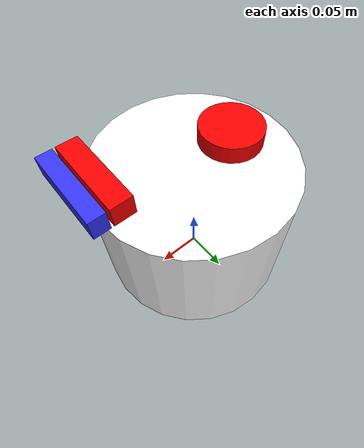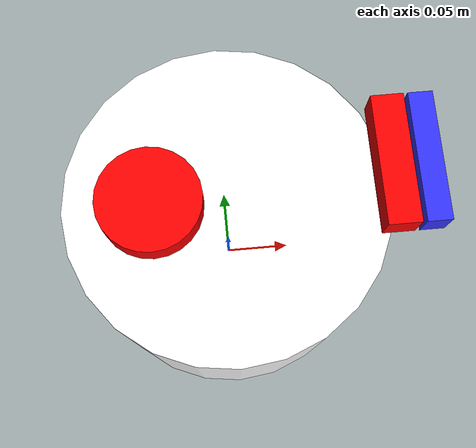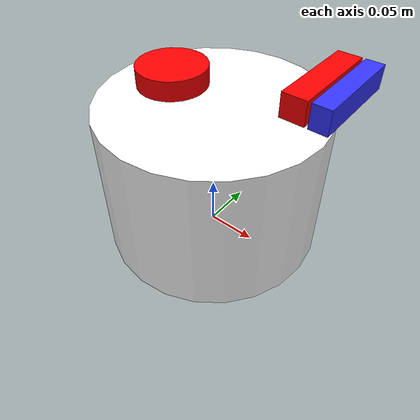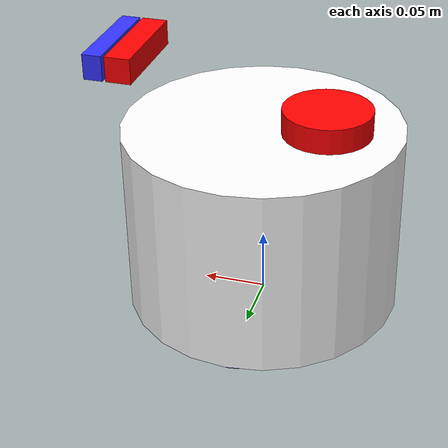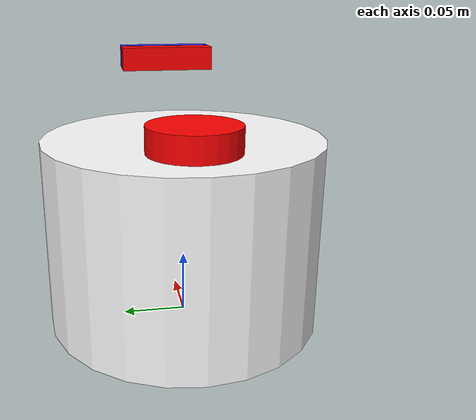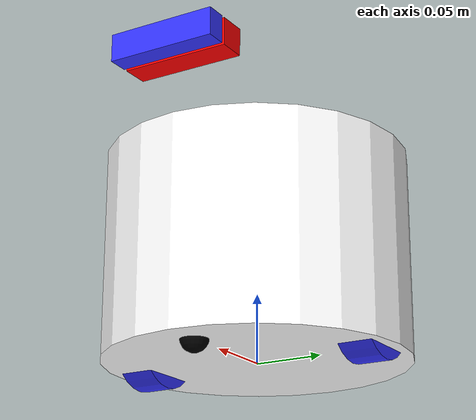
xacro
<?xml version="1.0"?>
<robot xmlns:xacro="http://www.ros.org/wiki/xacro" name="robot">
  <xacro:include filename="$(find my_robot_model)/description/inertial_macros.xacro"/>
  <xacro:include filename="$(find my_robot_model)/description/robot_core.xacro"/>
  <xacro:include filename="$(find my_robot_model)/description/robot_control.xacro"/>
  <xacro:include filename="$(find my_robot_model)/description/lidar.xacro"/>
  <xacro:include filename="$(find my_robot_model)/description/camera.xacro"/>
  <xacro:include filename="$(find my_robot_model)/description/depth_camera.xacro"/>
  <xacro:include filename="$(find my_robot_model)/description/imu.xacro"/>
</robot>

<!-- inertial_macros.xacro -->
<robot xmlns:xacro="http://www.ros.org/wiki/xacro">
    <!-- Specify some standard inertial calculations https://en.wikipedia.org/wiki/List_of_moments_of_inertia -->
    <!-- These make use of xacro's mathematical functionality -->

    <xacro:macro name="inertial_sphere" params="mass radius *origin">
        <inertial>
            <xacro:insert_block name="origin"/>
            <mass value="${mass}" />
            <inertia ixx="${(2/5) * mass * (radius*radius)}" ixy="0.0" ixz="0.0"
                    iyy="${(2/5) * mass * (radius*radius)}" iyz="0.0"
                    izz="${(2/5) * mass * (radius*radius)}" />
        </inertial>
    </xacro:macro>

    <xacro:macro name="inertial_box" params="mass x y z *origin">
        <inertial>
            <xacro:insert_block name="origin"/>
            <mass value="${mass}" />
            <inertia ixx="${(1/12) * mass * (y*y+z*z)}" ixy="0.0" ixz="0.0"
                    iyy="${(1/12) * mass * (x*x+z*z)}" iyz="0.0"
                    izz="${(1/12) * mass * (x*x+y*y)}" />
        </inertial>
    </xacro:macro>

    <xacro:macro name="inertial_cylinder" params="mass length radius *origin">
        <inertial>
            <xacro:insert_block name="origin"/>
            <mass value="${mass}" />
            <inertia ixx="${(1/12) * mass * (3*radius*radius + length*length)}" ixy="0.0" ixz="0.0"
                    iyy="${(1/12) * mass * (3*radius*radius + length*length)}" iyz="0.0"
                    izz="${(1/2) * mass * (radius*radius)}" />
        </inertial>
    </xacro:macro>
</robot>

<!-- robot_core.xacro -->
<robot xmlns:xacro="http://www.ros.org/wiki/xacro" name="robot">
<xacro:include filename="inertial_macros.xacro"/>

<material name="white">
  <color rgba="1 1 1 1" />
</material>
<material name="orange">
  <color rgba="1 0.3 0.1 1"/>
</material>
<material name="blue">
  <color rgba="0.2 0.2 1 1"/>
</material>
<material name="black">
  <color rgba="0 0 0 1"/>
</material>
<material name="red">
  <color rgba="1 0 0 1"/>
</material>

<link name="base_link">

</link>

<!-- BASE_FOOTPRINT LINK -->
<joint name="base_footprint_joint" type="fixed">
        <parent link="base_link"/>
        <child link="base_footprint"/>
        <origin xyz="0 0 0" rpy="0 0 0"/>
    </joint>

    <link name="base_footprint">
    </link>

<joint name="chassis_joint" type="fixed">
  <parent link="base_link"/>
  <child link="chassis"/>
  <origin xyz="0 0 0"/>
</joint>

<link name="chassis">
  <visual>
    <origin xyz="0 0 0.075"/>
    <geometry>
      <cylinder radius="0.11" length="0.15"/>
    </geometry>
    <material name="white"/>
  </visual>
  <collision>
    <origin xyz="0 0 0.075"/>
    <geometry>
      <cylinder radius="0.11" length="0.15"/>
    </geometry>
  </collision>
  <xacro:inertial_cylinder mass="1.3" length="0.15" radius="0.11">
    <origin xyz="0 0 0" rpy="0 0 0"/>
  </xacro:inertial_cylinder>
</link>

<joint name="left_wheel_joint" type="continuous">
  <parent link="base_link"/>
  <child link="left_wheel"/>
  <origin xyz="0 0.0875 0.0235" rpy="-${pi/2} 0 0" />
  <axis xyz="0 0 1"/>
</joint>
<link name="left_wheel">
  <visual>
    <geometry>
      <cylinder radius="0.0325" length="0.025"/>
    </geometry>
    <material name="blue"/>
  </visual>
  <collision>
    <geometry>
      <cylinder radius="0.0325" length="0.025"/>
    </geometry>
    <surface>
      <friction>
        <ode>
          <mu>1.0</mu>
          <mu2>1.0</mu2>
        </ode>
      </friction>
    </surface>
  </collision>
  <xacro:inertial_cylinder mass="0.05" length="0.025" radius="0.0325">
    <origin xyz="0 0 0" rpy="0 0 0"/>
  </xacro:inertial_cylinder>
</link>
<gazebo reference="left_wheel">
  <mu1>1.0</mu1>
  <mu2>1.0</mu2>
</gazebo>

<joint name="right_wheel_joint" type="continuous">
  <parent link="base_link"/>
  <child link="right_wheel"/>
  <origin xyz="0 -0.0875 0.0235" rpy="${pi/2} 0 0" />
  <axis xyz="0 0 -1"/>
  <dynamics damping="0.1" friction="0.1"/>
</joint>
<link name="right_wheel">
  <visual>
    <geometry>
      <cylinder radius="0.0325" length="0.025"/>
    </geometry>
    <material name="blue"/>
  </visual>
  <collision>
    <geometry>
      <cylinder radius="0.0325" length="0.025"/>
    </geometry>
    <surface>
      <friction>
        <ode>
          <mu>1.0</mu>
          <mu2>1.0</mu2>
        </ode>
      </friction>
    </surface>
  </collision>
  <xacro:inertial_cylinder mass="0.05" length="0.025" radius="0.0325">
    <origin xyz="0 0 0" rpy="0 0 0"/>
  </xacro:inertial_cylinder>
</link>
<gazebo reference="right_wheel">
  <mu1>1.0</mu1>
  <mu2>1.0</mu2>
</gazebo>

<joint name="caster_wheel_joint" type="fixed">
  <parent link="chassis"/>
  <child link="caster_wheel"/>
  <origin xyz="0.08 0 0.001"/>
</joint>
<link name="caster_wheel">
  <visual>
    <geometry>
      <sphere radius="0.01"/>
    </geometry>
    <material name="black"/>
  </visual>
  <collision>
    <geometry>
      <sphere radius="0.01"/>
    </geometry>
    <surface>
      <friction>
        <ode>
          <mu>0.0</mu>
          <mu2>0.0</mu2>
        </ode>
      </friction>
    </surface>
  </collision>
  <xacro:inertial_sphere mass="0.2" radius="0.01">
    <origin xyz="0 0 0" rpy="0 0 0"/>
  </xacro:inertial_sphere>
</link>
<gazebo reference="caster_wheel">
  <mu1>0.001</mu1>
  <mu2>0.001</mu2>
</gazebo>

<transmission name="left_wheel_trans">
  <type>transmission_interface/SimpleTransmission</type>
  <joint name="left_wheel_joint">
    <hardwareInterface>PositionJointInterface</hardwareInterface>
  </joint>
  <actuator name="left_wheel_motor">
    <mechanicalReduction>1</mechanicalReduction>
  </actuator>
</transmission>
<transmission name="right_wheel_trans">
  <type>transmission_interface/SimpleTransmission</type>
  <joint name="right_wheel_joint">
    <hardwareInterface>PositionJointInterface</hardwareInterface>
  </joint>
  <actuator name="right_wheel_motor">
    <mechanicalReduction>1</mechanicalReduction>
  </actuator>
</transmission>
</robot>

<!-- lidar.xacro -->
<robot xmlns:xacro="http://www.ros.org/wiki/xacro" name="sensors">

  <!-- LiDAR -->
  <joint name="laser_joint" type="fixed">
    <parent link="chassis"/>
    <child link="laser"/>
    <origin xyz="-0.05 0 0.15" rpy="0 0 ${pi}"/>
  </joint>

  <link name="laser">
    <visual>
      <geometry>
        <cylinder radius="0.035" length="0.04"/>
      </geometry>
      <material name="red"/>
    </visual>
    <collision>
      <geometry>
        <cylinder radius="0.035" length="0.04"/>
      </geometry>
    </collision>
    <xacro:inertial_cylinder mass="0.125" length="0.04" radius="0.035">
      <origin xyz="0 0 0" rpy="0 0 0"/>
    </xacro:inertial_cylinder>
  </link>

  <gazebo reference="laser">
    <sensor name="laser" type="gpu_lidar">
      <topic>scan</topic>
      <frame>laser</frame>
      <update_rate>10</update_rate>
      <gz_frame_id>laser</gz_frame_id>
      <lidar>
        <scan>
          <horizontal>
            <samples>360</samples>
            <resolution>1</resolution>
            <min_angle>-3.14159</min_angle>
            <max_angle>3.14159</max_angle>
          </horizontal>
        </scan>
        <range>
          <min>0.12</min>
          <max>10.0</max>
          <resolution>0.015</resolution>
        </range>
        <noise>
          <type>gaussian</type>
          <mean>0.0</mean>
          <stddev>0.01</stddev>
        </noise>
      </lidar>
      <always_on>true</always_on>
      <visualize>true</visualize>
    </sensor>
  </gazebo>

</robot>

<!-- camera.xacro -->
<robot xmlns:xacro="http://www.ros.org/wiki/xacro">

  <joint name="camera_joint" type="fixed">
    <parent link="chassis"/>
    <child link="camera_link"/>
    <origin xyz="0.1 0 0.2" rpy="0 0 0"/>
  </joint>

  <link name="camera_link">
    <visual>
      <geometry>
        <box size="0.02 0.08 0.02"/>
      </geometry>
      <material name="red"/>
    </visual>
    <collision>
      <geometry>
        <box size="0.02 0.08 0.02"/>
      </geometry>
    </collision>
    <xacro:inertial_box mass="0.1" x="0.02" y="0.08" z="0.02">
      <origin xyz="0 0 0" rpy="0 0 0"/>
    </xacro:inertial_box>
  </link>

  <joint name="camera_optical_joint" type="fixed">
    <parent link="camera_link"/>
    <child link="camera_link_optical"/>
    <origin xyz="0 0 0" rpy="${-pi/2} 0 ${-pi/2}"/>
  </joint>

  <link name="camera_link_optical"/>

  <gazebo reference="camera_link">
    <sensor name="camera" type="camera">
      <pose relative_to="camera_link_optical">0 0 0 0 -1.5708 -1.5708</pose>
      <topic>camera</topic>
      <update_rate>30</update_rate>
      <camera>
        <horizontal_fov>1.089</horizontal_fov>
        <image>
          <width>640</width>
          <height>480</height>
          <format>R8G8B8</format>
        </image>
        <clip>
          <near>0.05</near>
          <far>8.0</far>
        </clip>
      </camera>
      <always_on>1</always_on>
      <visualize>true</visualize>
    </sensor>
  </gazebo>

</robot>

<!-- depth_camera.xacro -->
<robot xmlns:xacro="http://www.ros.org/wiki/xacro">

  <joint name="depth_camera_joint" type="fixed">
    <parent link="chassis"/>
    <child link="depth_camera_link"/>
    <origin xyz="0.12 0 0.2" rpy="0 0 0"/>
  </joint>

  <link name="depth_camera_link">
    <visual>
      <geometry>
        <box size="0.015 0.08 0.02"/>
      </geometry>
      <material name="blue"/>
    </visual>
    <collision>
      <geometry>
        <box size="0.015 0.08 0.02"/>
      </geometry>
    </collision>
    <xacro:inertial_box mass="0.1" x="0.015" y="0.08" z="0.02">
      <origin xyz="0 0 0" rpy="0 0 0"/>
    </xacro:inertial_box>
  </link>

  <joint name="depth_camera_optical_joint" type="fixed">
    <parent link="depth_camera_link"/>
    <child link="depth_camera_link_optical"/>
    <origin xyz="0 0 0" rpy="${-pi/2} 0 ${-pi/2}"/>
  </joint>

  <link name="depth_camera_link_optical"/>

  <gazebo reference="depth_camera_link">
    <sensor name="depth_camera" type="depth_camera">
      <pose relative_to="depth_camera_link_optical">0 0 0 0 -1.5708 -1.5708</pose>
      <topic>depth_camera</topic>
      <update_rate>30</update_rate>
      <camera>
        <horizontal_fov>1.047</horizontal_fov>
        <image>
          <width>640</width>
          <height>480</height>
          <format>R_FLOAT32</format>
        </image>
        <clip>
          <near>0.1</near>
          <far>10.0</far>
        </clip>
      </camera>
      <always_on>1</always_on>
      <visualize>true</visualize>
    </sensor>
  </gazebo>

</robot>

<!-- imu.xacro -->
<robot xmlns:xacro="http://www.ros.org/wiki/xacro" name="robot">

  <joint name="imu_joint" type="fixed">
    <parent link="chassis"/>
    <child link="imu_link"/>
    <origin xyz="-0.055 0.025 0.081" rpy="0 0 0"/>
  </joint>

  <link name="imu_link">
  </link>

</robot>
